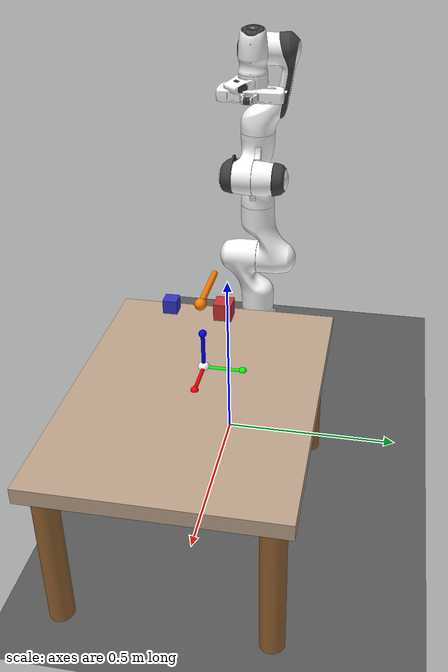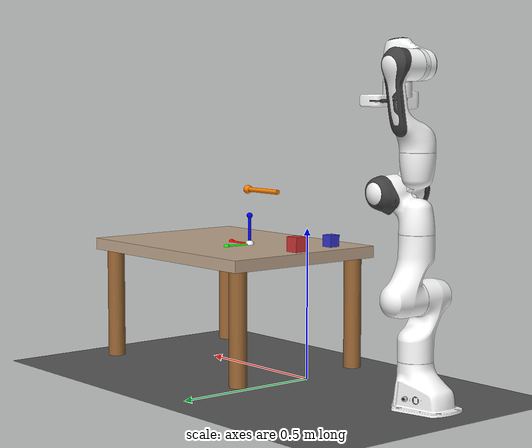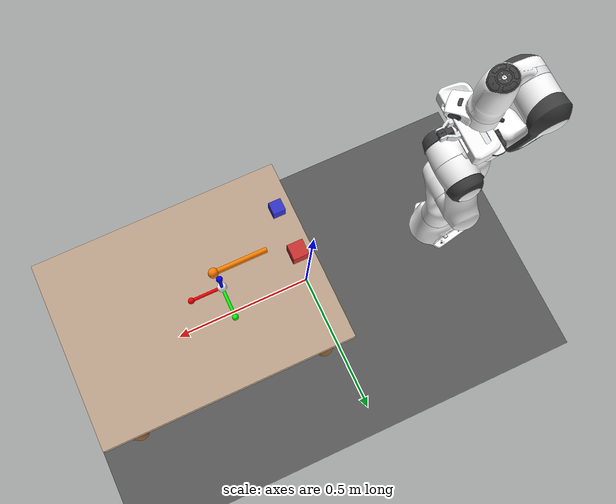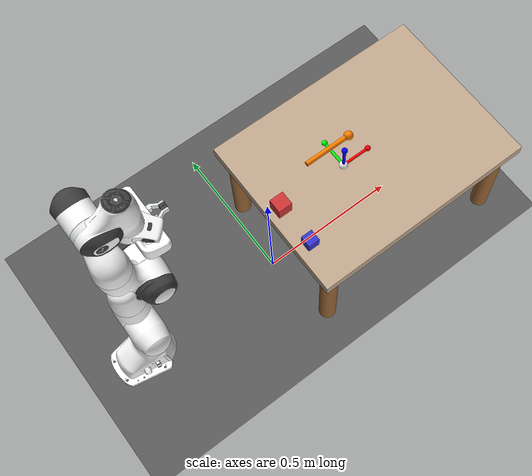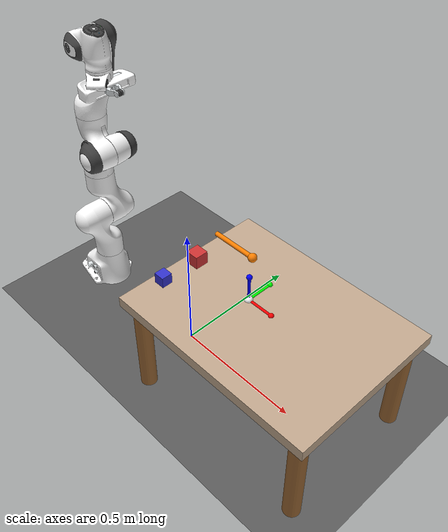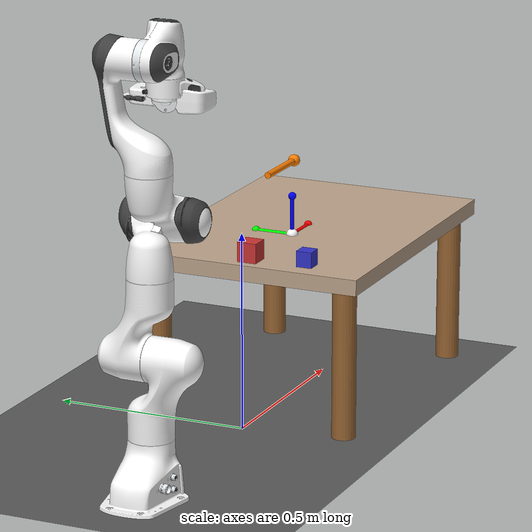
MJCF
<mujoco model="panda_demo_scene_strong">
  <include file="panda_demo_scene.xml"/>

  <!-- Override gripper actuator with stronger force -->
  <actuator>
    <!-- Keep all existing actuators but override the gripper -->
    <general class="panda" name="actuator1" joint="joint1" gainprm="4500" biasprm="0 -4500 -450"/>
    <general class="panda" name="actuator2" joint="joint2" gainprm="4500" biasprm="0 -4500 -450"
      ctrlrange="-1.7628 1.7628"/>
    <general class="panda" name="actuator3" joint="joint3" gainprm="3500" biasprm="0 -3500 -350"/>
    <general class="panda" name="actuator4" joint="joint4" gainprm="3500" biasprm="0 -3500 -350"
      ctrlrange="-3.0718 -0.0698"/>
    <general class="panda" name="actuator5" joint="joint5" gainprm="2000" biasprm="0 -2000 -200" forcerange="-12 12"/>
    <general class="panda" name="actuator6" joint="joint6" gainprm="2000" biasprm="0 -2000 -200" forcerange="-12 12"
      ctrlrange="-0.0175 3.7525"/>
    <general class="panda" name="actuator7" joint="joint7" gainprm="2000" biasprm="0 -2000 -200" forcerange="-12 12"/>

    <!-- STRONGER GRIPPER: Increased gain and force range -->
    <general name="actuator8" tendon="split" forcerange="-800 800" ctrlrange="0 255"
      gainprm="0.2 0 0" biasprm="0 -800 -80"/>
  </actuator>
</mujoco>

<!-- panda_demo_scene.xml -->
<mujoco model="panda_demo_scene">
  <compiler angle="radian" meshdir="assets" autolimits="true"/>

  <option integrator="implicitfast"/>

  <default>
    <default class="panda">
      <material specular="0.5" shininess="0.25"/>
      <joint armature="0.1" damping="1" axis="0 0 1" range="-2.8973 2.8973"/>
      <general dyntype="none" biastype="affine" ctrlrange="-2.8973 2.8973" forcerange="-87 87"/>
      <default class="finger">
        <joint axis="0 1 0" type="slide" range="0 0.04"/>
      </default>

      <default class="visual">
        <geom type="mesh" contype="0" conaffinity="0" group="2"/>
      </default>
      <default class="collision">
        <geom type="mesh" group="3" contype="1" conaffinity="1"/>
        <default class="fingertip_pad_collision_1">
          <geom type="box" size="0.0085 0.004 0.0085" pos="0 0.0055 0.0445" contype="1" conaffinity="1"/>
        </default>
        <default class="fingertip_pad_collision_2">
          <geom type="box" size="0.003 0.002 0.003" pos="0.0055 0.002 0.05" contype="1" conaffinity="1"/>
        </default>
        <default class="fingertip_pad_collision_3">
          <geom type="box" size="0.003 0.002 0.003" pos="-0.0055 0.002 0.05" contype="1" conaffinity="1"/>
        </default>
        <default class="fingertip_pad_collision_4">
          <geom type="box" size="0.003 0.002 0.0035" pos="0.0055 0.002 0.0395" contype="1" conaffinity="1"/>
        </default>
        <default class="fingertip_pad_collision_5">
          <geom type="box" size="0.003 0.002 0.0035" pos="-0.0055 0.002 0.0395" contype="1" conaffinity="1"/>
        </default>
      </default>
    </default>
  </default>

  <asset>
    <material class="panda" name="white" rgba="1 1 1 1"/>
    <material class="panda" name="off_white" rgba="0.901961 0.921569 0.929412 1"/>
    <material class="panda" name="black" rgba="0.25 0.25 0.25 1"/>
    <material class="panda" name="green" rgba="0 1 0 1"/>
    <material class="panda" name="light_blue" rgba="0.039216 0.541176 0.780392 1"/>

    <!-- Collision meshes -->
    <mesh name="link0_c" file="link0.stl"/>
    <mesh name="link1_c" file="link1.stl"/>
    <mesh name="link2_c" file="link2.stl"/>
    <mesh name="link3_c" file="link3.stl"/>
    <mesh name="link4_c" file="link4.stl"/>
    <mesh name="link5_c0" file="link5_collision_0.obj"/>
    <mesh name="link5_c1" file="link5_collision_1.obj"/>
    <mesh name="link5_c2" file="link5_collision_2.obj"/>
    <mesh name="link6_c" file="link6.stl"/>
    <mesh name="link7_c" file="link7.stl"/>
    <mesh name="hand_c" file="hand.stl"/>

    <!-- Visual meshes -->
    <mesh file="link0_0.obj"/>
    <mesh file="link0_1.obj"/>
    <mesh file="link0_2.obj"/>
    <mesh file="link0_3.obj"/>
    <mesh file="link0_4.obj"/>
    <mesh file="link0_5.obj"/>
    <mesh file="link0_7.obj"/>
    <mesh file="link0_8.obj"/>
    <mesh file="link0_9.obj"/>
    <mesh file="link0_10.obj"/>
    <mesh file="link0_11.obj"/>
    <mesh file="link1.obj"/>
    <mesh file="link2.obj"/>
    <mesh file="link3_0.obj"/>
    <mesh file="link3_1.obj"/>
    <mesh file="link3_2.obj"/>
    <mesh file="link3_3.obj"/>
    <mesh file="link4_0.obj"/>
    <mesh file="link4_1.obj"/>
    <mesh file="link4_2.obj"/>
    <mesh file="link4_3.obj"/>
    <mesh file="link5_0.obj"/>
    <mesh file="link5_1.obj"/>
    <mesh file="link5_2.obj"/>
    <mesh file="link6_0.obj"/>
    <mesh file="link6_1.obj"/>
    <mesh file="link6_2.obj"/>
    <mesh file="link6_3.obj"/>
    <mesh file="link6_4.obj"/>
    <mesh file="link6_5.obj"/>
    <mesh file="link6_6.obj"/>
    <mesh file="link6_7.obj"/>
    <mesh file="link6_8.obj"/>
    <mesh file="link6_9.obj"/>
    <mesh file="link6_10.obj"/>
    <mesh file="link6_11.obj"/>
    <mesh file="link6_12.obj"/>
    <mesh file="link6_13.obj"/>
    <mesh file="link6_14.obj"/>
    <mesh file="link6_15.obj"/>
    <mesh file="link6_16.obj"/>
    <mesh file="link7_0.obj"/>
    <mesh file="link7_1.obj"/>
    <mesh file="link7_2.obj"/>
    <mesh file="link7_3.obj"/>
    <mesh file="link7_4.obj"/>
    <mesh file="link7_5.obj"/>
    <mesh file="link7_6.obj"/>
    <mesh file="link7_7.obj"/>
    <mesh file="hand_0.obj"/>
    <mesh file="hand_1.obj"/>
    <mesh file="hand_2.obj"/>
    <mesh file="hand_3.obj"/>
    <mesh file="hand_4.obj"/>
    <mesh file="finger_0.obj"/>
    <mesh file="finger_1.obj"/>

    <!-- Scene materials -->
    <texture type="2d" name="table_tex" builtin="checker" rgb1="0.8 0.7 0.6" rgb2="0.7 0.6 0.5" width="512" height="512"/>
    <material name="table_mat" texture="table_tex" texrepeat="2 2" reflectance="0.1"/>
    <material name="red_block" rgba="0.8 0.2 0.2 1"/>
    <material name="blue_block" rgba="0.2 0.2 0.8 1"/>
    <texture type="2d" name="floor_tex" builtin="checker" rgb1="0.4 0.4 0.4" rgb2="0.3 0.3 0.3" width="512" height="512"/>
    <material name="floor_mat" texture="floor_tex" texrepeat="10 10" reflectance="0.05"/>
  </asset>

  <worldbody>
    <!-- Better lighting setup -->
    <light name="main_light" pos="1 1 3" dir="-0.3 -0.3 -1" directional="true" diffuse="0.8 0.8 0.8"/>
    <light name="fill_light" pos="-1 0.5 2" dir="0.5 -0.2 -1" directional="true" diffuse="0.4 0.4 0.4"/>

    <!-- Floor -->
    <geom name="floor" type="plane" size="2 2 0.1" material="floor_mat" pos="0 0 0"/>

    <!-- Table -->
    <body name="table" pos="0.4 0 0.4">
      <geom name="table_top" type="box" size="0.4 0.3 0.02" material="table_mat" pos="0 0 0"/>
      <geom name="table_leg1" type="cylinder" size="0.03 0.2" rgba="0.6 0.4 0.2 1" pos="0.35 0.25 -0.2"/>
      <geom name="table_leg2" type="cylinder" size="0.03 0.2" rgba="0.6 0.4 0.2 1" pos="0.35 -0.25 -0.2"/>
      <geom name="table_leg3" type="cylinder" size="0.03 0.2" rgba="0.6 0.4 0.2 1" pos="-0.35 0.25 -0.2"/>
      <geom name="table_leg4" type="cylinder" size="0.03 0.2" rgba="0.6 0.4 0.2 1" pos="-0.35 -0.25 -0.2"/>
    </body>

    <!-- Target block to grasp - positioned for optimal hand reach -->
    <body name="target_block" pos="0.05 0.0 0.445">
      <inertial pos="0 0 0" mass="0.05" diaginertia="0.00002 0.00002 0.00002"/>
      <freejoint/>
      <geom name="target_block_geom" type="box" size="0.025 0.025 0.025"
            material="red_block" contype="1" conaffinity="1" friction="1 0.5 0.5"/>
    </body>

    <!-- Another block for context - positioned with safe distance from red block -->
    <body name="block2" pos="0.05 -0.15 0.445">
      <inertial pos="0 0 0" mass="0.03" diaginertia="0.00001 0.00001 0.00001"/>
      <freejoint/>
      <geom name="block2_geom" type="box" size="0.02 0.02 0.02"
            material="blue_block" contype="1" conaffinity="1" friction="1 0.5 0.5"/>
    </body>

    <!-- The Panda robot -->
    <body name="link0" childclass="panda" pos="-0.5 0 0">
      <inertial mass="0.629769" pos="-0.041018 -0.00014 0.049974"
        fullinertia="0.00315 0.00388 0.004285 8.2904e-7 0.00015 8.2299e-6"/>
      <geom mesh="link0_0" material="off_white" class="visual"/>
      <geom mesh="link0_1" material="black" class="visual"/>
      <geom mesh="link0_2" material="off_white" class="visual"/>
      <geom mesh="link0_3" material="black" class="visual"/>
      <geom mesh="link0_4" material="off_white" class="visual"/>
      <geom mesh="link0_5" material="black" class="visual"/>
      <geom mesh="link0_7" material="white" class="visual"/>
      <geom mesh="link0_8" material="white" class="visual"/>
      <geom mesh="link0_9" material="black" class="visual"/>
      <geom mesh="link0_10" material="off_white" class="visual"/>
      <geom mesh="link0_11" material="white" class="visual"/>
      <geom mesh="link0_c" class="collision"/>
      <body name="link1" pos="0 0 0.333">
        <inertial mass="4.970684" pos="0.003875 0.002081 -0.04762"
          fullinertia="0.70337 0.70661 0.0091170 -0.00013900 0.0067720 0.019169"/>
        <joint name="joint1"/>
        <geom material="white" mesh="link1" class="visual"/>
        <geom mesh="link1_c" class="collision"/>
        <body name="link2" quat="1 -1 0 0">
          <inertial mass="0.646926" pos="-0.003141 -0.02872 0.003495"
            fullinertia="0.0079620 2.8110e-2 2.5995e-2 -3.925e-3 1.0254e-2 7.04e-4"/>
          <joint name="joint2" range="-1.7628 1.7628"/>
          <geom material="white" mesh="link2" class="visual"/>
          <geom mesh="link2_c" class="collision"/>
          <body name="link3" pos="0 -0.316 0" quat="1 1 0 0">
            <joint name="joint3"/>
            <inertial mass="3.228604" pos="2.7518e-2 3.9252e-2 -6.6502e-2"
              fullinertia="3.7242e-2 3.6155e-2 1.083e-2 -4.761e-3 -1.1396e-2 -1.2805e-2"/>
            <geom mesh="link3_0" material="white" class="visual"/>
            <geom mesh="link3_1" material="white" class="visual"/>
            <geom mesh="link3_2" material="white" class="visual"/>
            <geom mesh="link3_3" material="black" class="visual"/>
            <geom mesh="link3_c" class="collision"/>
            <body name="link4" pos="0.0825 0 0" quat="1 1 0 0">
              <inertial mass="3.587895" pos="-5.317e-2 1.04419e-1 2.7454e-2"
                fullinertia="2.5853e-2 1.9552e-2 2.8323e-2 7.796e-3 -1.332e-3 8.641e-3"/>
              <joint name="joint4" range="-3.0718 -0.0698"/>
              <geom mesh="link4_0" material="white" class="visual"/>
              <geom mesh="link4_1" material="white" class="visual"/>
              <geom mesh="link4_2" material="black" class="visual"/>
              <geom mesh="link4_3" material="white" class="visual"/>
              <geom mesh="link4_c" class="collision"/>
              <body name="link5" pos="-0.0825 0.384 0" quat="1 -1 0 0">
                <inertial mass="1.225946" pos="-1.1953e-2 4.1065e-2 -3.8437e-2"
                  fullinertia="3.5549e-2 2.9474e-2 8.627e-3 -2.117e-3 -4.037e-3 2.29e-4"/>
                <joint name="joint5"/>
                <geom mesh="link5_0" material="black" class="visual"/>
                <geom mesh="link5_1" material="white" class="visual"/>
                <geom mesh="link5_2" material="white" class="visual"/>
                <geom mesh="link5_c0" class="collision"/>
                <geom mesh="link5_c1" class="collision"/>
                <geom mesh="link5_c2" class="collision"/>
                <body name="link6" quat="1 1 0 0">
                  <inertial mass="1.666555" pos="6.0149e-2 -1.4117e-2 -1.0517e-2"
                    fullinertia="1.964e-3 4.354e-3 5.433e-3 1.09e-4 -1.158e-3 3.41e-4"/>
                  <joint name="joint6" range="-0.0175 3.7525"/>
                  <geom mesh="link6_0" material="off_white" class="visual"/>
                  <geom mesh="link6_1" material="white" class="visual"/>
                  <geom mesh="link6_2" material="black" class="visual"/>
                  <geom mesh="link6_3" material="white" class="visual"/>
                  <geom mesh="link6_4" material="white" class="visual"/>
                  <geom mesh="link6_5" material="white" class="visual"/>
                  <geom mesh="link6_6" material="white" class="visual"/>
                  <geom mesh="link6_7" material="light_blue" class="visual"/>
                  <geom mesh="link6_8" material="light_blue" class="visual"/>
                  <geom mesh="link6_9" material="black" class="visual"/>
                  <geom mesh="link6_10" material="black" class="visual"/>
                  <geom mesh="link6_11" material="white" class="visual"/>
                  <geom mesh="link6_12" material="green" class="visual"/>
                  <geom mesh="link6_13" material="white" class="visual"/>
                  <geom mesh="link6_14" material="black" class="visual"/>
                  <geom mesh="link6_15" material="black" class="visual"/>
                  <geom mesh="link6_16" material="white" class="visual"/>
                  <geom mesh="link6_c" class="collision"/>
                  <body name="link7" pos="0.088 0 0" quat="1 1 0 0">
                    <inertial mass="7.35522e-01" pos="1.0517e-2 -4.252e-3 6.1597e-2"
                      fullinertia="1.2516e-2 1.0027e-2 4.815e-3 -4.28e-4 -1.196e-3 -7.41e-4"/>
                    <joint name="joint7"/>
                    <geom mesh="link7_0" material="white" class="visual"/>
                    <geom mesh="link7_1" material="black" class="visual"/>
                    <geom mesh="link7_2" material="black" class="visual"/>
                    <geom mesh="link7_3" material="black" class="visual"/>
                    <geom mesh="link7_4" material="black" class="visual"/>
                    <geom mesh="link7_5" material="black" class="visual"/>
                    <geom mesh="link7_6" material="black" class="visual"/>
                    <geom mesh="link7_7" material="white" class="visual"/>
                    <geom mesh="link7_c" class="collision"/>
                    <body name="hand" pos="0 0 0.107" quat="0.707 0 0.707 0">
                      <inertial mass="0.73" pos="-0.01 0 0.03" diaginertia="0.001 0.0025 0.0017"/>
                      <geom mesh="hand_0" material="off_white" class="visual"/>
                      <geom mesh="hand_1" material="black" class="visual"/>
                      <geom mesh="hand_2" material="black" class="visual"/>
                      <geom mesh="hand_3" material="white" class="visual"/>
                      <geom mesh="hand_4" material="off_white" class="visual"/>
                      <geom mesh="hand_c" class="collision"/>
                      <body name="left_finger" pos="0 0 0.0584">
                        <inertial mass="0.015" pos="0 0 0" diaginertia="2.375e-6 2.375e-6 7.5e-7"/>
                        <joint name="finger_joint1" class="finger"/>
                        <geom mesh="finger_0" material="off_white" class="visual"/>
                        <geom mesh="finger_1" material="black" class="visual"/>
                        <geom mesh="finger_0" class="collision"/>
                        <geom class="fingertip_pad_collision_1"/>
                        <geom class="fingertip_pad_collision_2"/>
                        <geom class="fingertip_pad_collision_3"/>
                        <geom class="fingertip_pad_collision_4"/>
                        <geom class="fingertip_pad_collision_5"/>
                      </body>
                      <body name="right_finger" pos="0 0 0.0584" quat="0 0 0 1">
                        <inertial mass="0.015" pos="0 0 0" diaginertia="2.375e-6 2.375e-6 7.5e-7"/>
                        <joint name="finger_joint2" class="finger"/>
                        <geom mesh="finger_0" material="off_white" class="visual"/>
                        <geom mesh="finger_1" material="black" class="visual"/>
                        <geom mesh="finger_0" class="collision"/>
                        <geom class="fingertip_pad_collision_1"/>
                        <geom class="fingertip_pad_collision_2"/>
                        <geom class="fingertip_pad_collision_3"/>
                        <geom class="fingertip_pad_collision_4"/>
                        <geom class="fingertip_pad_collision_5"/>
                      </body>

                      <!-- Wrist-mounted camera near fingertips for manipulation -->
                      <body name="wrist_camera" pos="0 0 0.08">
                        <camera name="wrist_cam" pos="0 0 0" xyaxes="0 0 1 1 0 0" fovy="70"/>
                      </body>

                    </body>
                  </body>
                </body>
              </body>
            </body>
          </body>
        </body>
      </body>
    </body>

    <!-- Camera positions for better viewing -->
    <body name="camera_mount" pos="1.2 -0.8 1.0">
      <camera name="demo_cam" pos="0 0 0" xyaxes="0.8 0.6 0 -0.3 0.4 0.9" fovy="45"/>
    </body>

    <body name="side_camera" pos="0.2 -1.5 0.8">
      <camera name="side_cam" pos="0 0 0" xyaxes="1 0 0 0 0.7 0.7" fovy="50"/>
    </body>

    <body name="overhead_camera" pos="0.5 0 2.0">
      <camera name="overhead_cam" pos="0 0 0" xyaxes="1 0 0 0 1 0" fovy="60"/>
    </body>

    <!-- Coordinate system axes for visualization -->
    <body name="coord_axes" pos="0.3 0 0.42">
      <!-- X-axis (Red) -->
      <geom name="x_axis" type="cylinder" size="0.005 0.05" pos="0.05 0 0" quat="0.707 0 0.707 0"
            rgba="1 0 0 1" contype="0" conaffinity="0"/>
      <geom name="x_tip" type="sphere" size="0.01" pos="0.1 0 0" rgba="1 0 0 1" contype="0" conaffinity="0"/>

      <!-- Y-axis (Green) -->
      <geom name="y_axis" type="cylinder" size="0.005 0.05" pos="0 0.05 0" quat="0.707 0.707 0 0"
            rgba="0 1 0 1" contype="0" conaffinity="0"/>
      <geom name="y_tip" type="sphere" size="0.01" pos="0 0.1 0" rgba="0 1 0 1" contype="0" conaffinity="0"/>

      <!-- Z-axis (Blue) -->
      <geom name="z_axis" type="cylinder" size="0.005 0.05" pos="0 0 0.05" quat="1 0 0 0"
            rgba="0 0 1 1" contype="0" conaffinity="0"/>
      <geom name="z_tip" type="sphere" size="0.01" pos="0 0 0.1" rgba="0 0 1 1" contype="0" conaffinity="0"/>

      <!-- Origin marker -->
      <geom name="origin" type="sphere" size="0.015" pos="0 0 0" rgba="1 1 1 1" contype="0" conaffinity="0"/>
    </body>

    <!-- Gripper direction indicator -->
    <body name="gripper_direction" pos="0.15 0 0.61">
      <geom name="gripper_arrow" type="cylinder" size="0.008 0.08" pos="0.08 0 0" quat="0.707 0 0.707 0"
            rgba="1 0.5 0 1" contype="0" conaffinity="0"/>
      <geom name="gripper_tip" type="sphere" size="0.015" pos="0.16 0 0" rgba="1 0.5 0 1" contype="0" conaffinity="0"/>
    </body>
  </worldbody>

  <tendon>
    <fixed name="split">
      <joint joint="finger_joint1" coef="0.5"/>
      <joint joint="finger_joint2" coef="0.5"/>
    </fixed>
  </tendon>

  <equality>
    <joint joint1="finger_joint1" joint2="finger_joint2" solimp="0.95 0.99 0.001" solref="0.005 1"/>
  </equality>

  <actuator>
    <general class="panda" name="actuator1" joint="joint1" gainprm="4500" biasprm="0 -4500 -450"/>
    <general class="panda" name="actuator2" joint="joint2" gainprm="4500" biasprm="0 -4500 -450"
      ctrlrange="-1.7628 1.7628"/>
    <general class="panda" name="actuator3" joint="joint3" gainprm="3500" biasprm="0 -3500 -350"/>
    <general class="panda" name="actuator4" joint="joint4" gainprm="3500" biasprm="0 -3500 -350"
      ctrlrange="-3.0718 -0.0698"/>
    <general class="panda" name="actuator5" joint="joint5" gainprm="2000" biasprm="0 -2000 -200" forcerange="-12 12"/>
    <general class="panda" name="actuator6" joint="joint6" gainprm="2000" biasprm="0 -2000 -200" forcerange="-12 12"
      ctrlrange="-0.0175 3.7525"/>
    <general class="panda" name="actuator7" joint="joint7" gainprm="2000" biasprm="0 -2000 -200" forcerange="-12 12"/>
    <general class="panda" name="actuator8" tendon="split" forcerange="-800 800" ctrlrange="0 255"
      gainprm="0.5 0 0" biasprm="0 -800 -80"/>
  </actuator>

  <!-- Updated keyframe for new scene with blocks on table -->
  <keyframe>
    <key name="home" qpos="0.05 0.0 0.445 1 0 0 0 0.05 -0.15 0.445 1 0 0 0 0 -0.5 0 -2.0 -0.8 1.5 0 0.04 0.04" ctrl="0 -0.5 0 -2.0 -0.8 1.5 0 255"/>
  </keyframe>

  <!-- High quality rendering settings -->
  <visual>
    <global offwidth="1280" offheight="720"/>
    <quality shadowsize="4096" offsamples="8"/>
    <map force="0.1" fogstart="3" fogend="5"/>
  </visual>
</mujoco>
